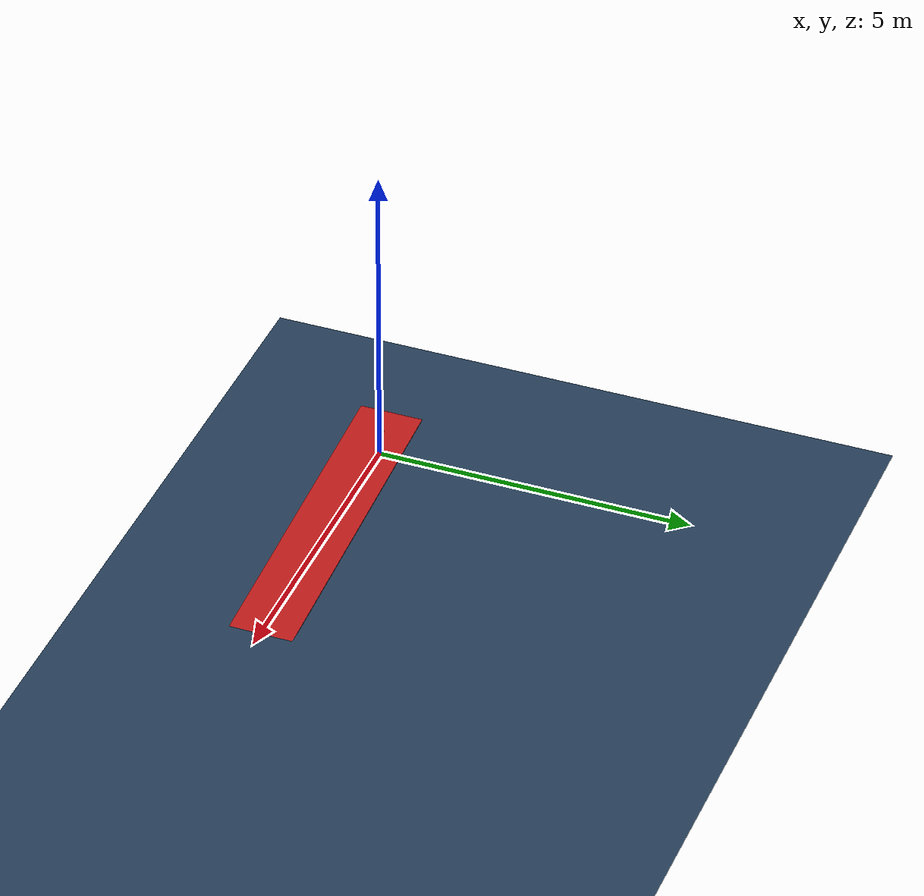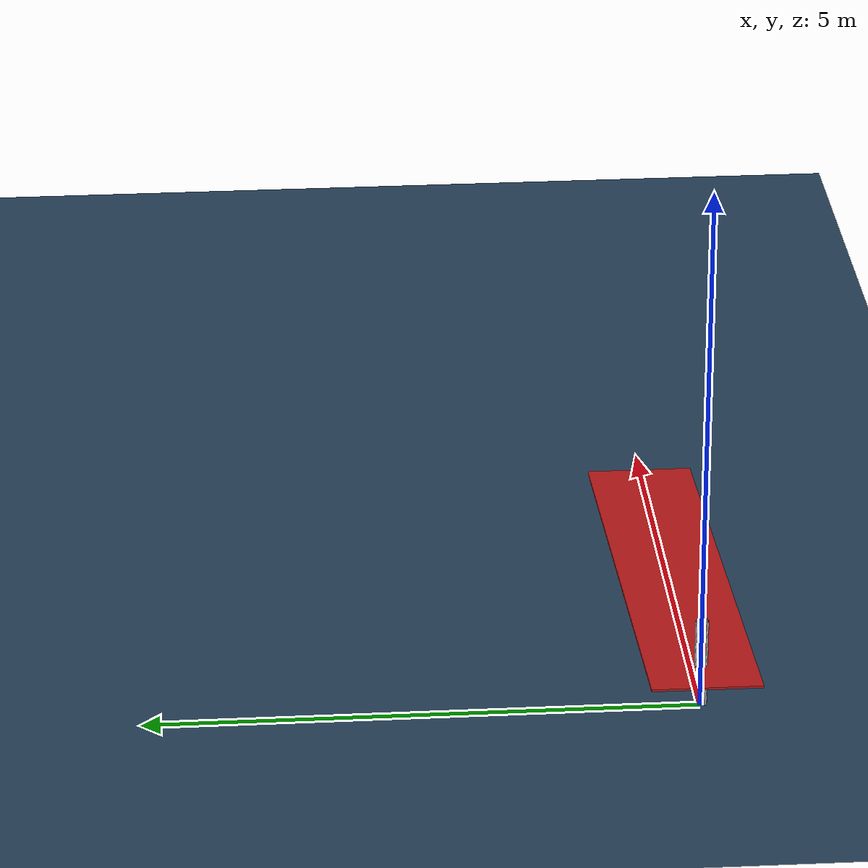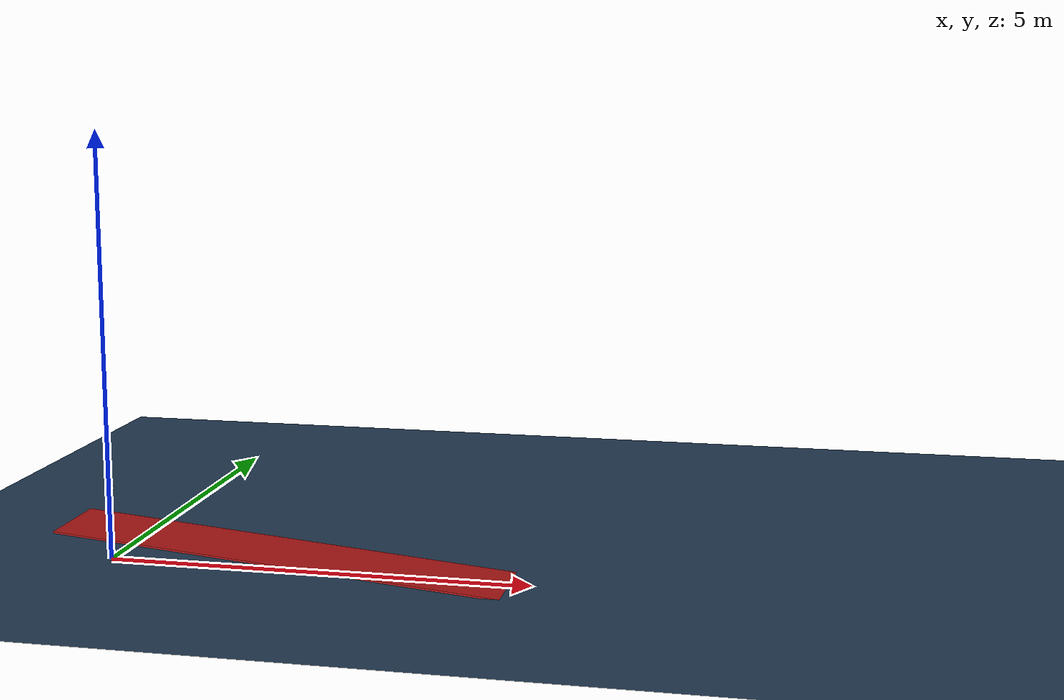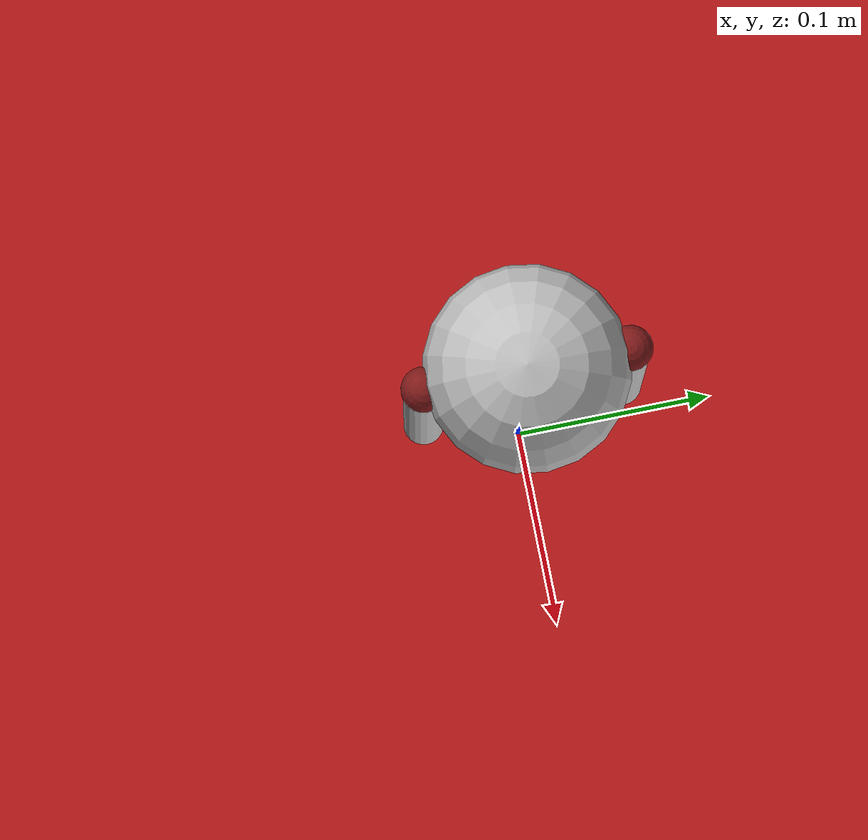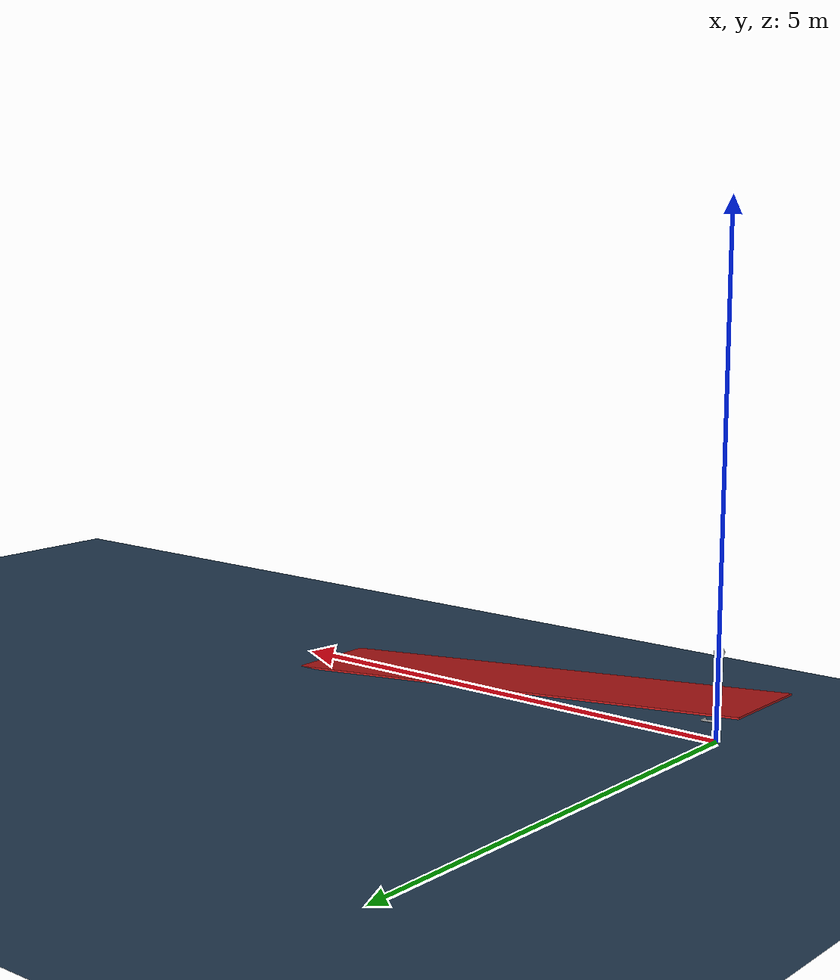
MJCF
<mujoco model="tensegrity default scene">
  <compiler angle="degree" coordinate="local" inertiafromgeom="true" autolimits="true" />
  <option integrator="RK4" timestep="0.001" gravity="0 0 -9.81" />

  <visual>
    <headlight diffuse="0.6 0.6 0.6" ambient="0.3 0.3 0.3" specular="0 0 0" />
    <rgba haze="0.15 0.25 0.35 1" />
    <global azimuth="120" elevation="-20" />
  </visual>

  <statistic center="0 0 .3" extent="1.2" />

  <asset>
    <texture type="skybox" builtin="gradient" rgb1="0.3 0.5 0.7" rgb2="0 0 0" width="512" height="3072" />
    <texture type="2d" name="groundplane" builtin="checker" mark="edge" rgb1="0.2 0.3 0.4" rgb2="0.1 0.2 0.3" markrgb="0.8 0.8 0.8" width="300" height="300" />
    <material name="groundplane" texture="groundplane" texuniform="true" texrepeat="5 5" reflectance="0.2" />
  </asset>

  <worldbody>
    <light pos="2.5 0 3" dir="0 0 -1" directional="false" />
    <geom name="floor" size="0 0 0.05" type="plane" material="groundplane" friction="150 150 150" />

    <geom name="slope" type="box" size="5 0.5 0.01" pos="4.5 0 0.0" rgba="0.75 0.1 0.1 1" euler="0 5 0" condim="4" />

  </worldbody>
<include file="PassiveWalkerRobot.xml" /></mujoco>

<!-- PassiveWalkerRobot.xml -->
<mujoco>
    <default>
        <joint armature="0.0" damping="0.01" type="hinge" range="-150 0" axis="0 -1 0"/>
        <geom condim="3" friction="1.5 1.0 1.0" margin="0.001"/>
        <default class="motor">
            <cylinder gear="100" ctrllimited="true" ctrlrange="-1 1"/>
        </default>
    </default>
    <worldbody>
        <body name="Base" pos="0.0 0.0 0.8532827888818888">
            <joint type="free"/>
            <geom type="sphere" rgba="0.75 0.75 0.75 1.0" size="0.05" mass="0.02"/>
            <body name="rod_0.1" pos="0.0 -0.05 -0.2499359706428231">
                <geom name="geom_0.1" type="capsule" fromto="-0.0 -0.0 0.2499359706428231 0.0 0.0 -0.2499359706428231" size="0.01" rgba="0.75 0.75 0.75 1.0" density="159.15494309189535"/>
                <site name="site_0.1" pos="0 0 0" quat="0.7071067811865476 -0.0 0.7071067811865475 0.0"/>
                <joint name="joint_Base=rod_0.1" pos="-0.0 -0.0 0.2499359706428231" range="-45 45"/>
                <body name="p0" pos="-0.0 -0.0 0.2499359706428231">
                    <geom type="sphere" size="0.011000000000000001" rgba="0.5 0.1 0.1 1.0" density="23873.2414637843"/>
                    <site name="p0"/>
                </body>
                <body name="rod_1.2" pos="0.0 0.0 -0.4208913944409444">
                    <geom name="geom_1.2" type="capsule" fromto="-0.0 -0.0 0.17095542379812131 0.0 0.0 -0.17095542379812131" size="0.01" rgba="0.75 0.75 0.75 1.0" density="159.15494309189535"/>
                    <site name="site_1.2" pos="0 0 0" quat="0.7071067811865476 -0.0 0.7071067811865475 0.0"/>
                    <joint name="joint_rod_0.1=rod_1.2" pos="-0.0 -0.0 0.17095542379812131" range="-150 0"/>
                    <body name="p1" pos="-0.0 -0.0 0.17095542379812131">
                        <geom type="sphere" size="0.011000000000000001" rgba="0.5 0.1 0.1 1.0" density="23873.2414637843"/>
                        <site name="p1"/>
                    </body>
                    <body name="rod_2.3" pos="0.24957178674970273 -0.012500000000000004 -0.17095542379812131">
                        <geom name="geom_2.3" type="capsule" fromto="-0.24957178674970273 0.012500000000000004 -0.0 0.24957178674970273 -0.012500000000000004 0.0" size="0.01" rgba="0.75 0.75 0.75 1.0" density="159.15494309189535"/>
                        <site name="site_2.3" pos="0 0 0" quat="0.9996869664537058 0.0 0.0 -0.025019374544287303"/>
                        <body name="rod_3.4" pos="0.24957178674970273 0.017499999999999995 0.0">
                            <geom name="geom_3.4" type="capsule" fromto="-0.0 -0.03 -0.0 0.0 0.03 0.0" size="0.01" rgba="0.75 0.75 0.75 1.0" density="159.15494309189535"/>
                            <site name="site_3.4" pos="0 0 0" quat="0.7071067811865476 0.0 0.0 0.7071067811865475"/>
                        </body>
                    </body>
                </body>
            </body>
            <body name="rod_5.6" pos="0.0 0.05 -0.24162377576819744">
                <geom name="geom_5.6" type="capsule" fromto="-0.0 -0.0 0.24162377576819744 0.0 0.0 -0.24162377576819744" size="0.01" rgba="0.75 0.75 0.75 1.0" density="159.15494309189535"/>
                <site name="site_5.6" pos="0 0 0" quat="0.7071067811865476 -0.0 0.7071067811865475 0.0"/>
                <joint name="joint_Base=rod_5.6" pos="-0.0 -0.0 0.24162377576819744" range="-45 45"/>
                <body name="p5" pos="-0.0 -0.0 0.24162377576819744">
                    <geom type="sphere" size="0.011000000000000001" rgba="0.5 0.1 0.1 1.0" density="23873.2414637843"/>
                    <site name="p5"/>
                </body>
                <body name="rod_6.7" pos="0.0 0.0 -0.3229553178785165">
                    <geom name="geom_6.7" type="capsule" fromto="-0.0 -0.0 0.08133154211031907 0.0 0.0 -0.08133154211031907" size="0.01" rgba="0.75 0.75 0.75 1.0" density="159.15494309189535"/>
                    <site name="site_6.7" pos="0 0 0" quat="0.7071067811865476 -0.0 0.7071067811865475 0.0"/>
                    <joint name="joint_rod_5.6=rod_6.7" pos="-0.0 -0.0 0.08133154211031907" range="-150 0"/>
                    <body name="p6" pos="-0.0 -0.0 0.08133154211031907">
                        <geom type="sphere" size="0.011000000000000001" rgba="0.5 0.1 0.1 1.0" density="23873.2414637843"/>
                        <site name="p6"/>
                    </body>
                    <body name="rod_7.8" pos="0.056250837581451246 0.012500000000000004 -0.08133154211031907">
                        <geom name="geom_7.8" type="capsule" fromto="-0.056250837581451246 -0.012500000000000004 -0.0 0.056250837581451246 0.012500000000000004 0.0" size="0.01" rgba="0.75 0.75 0.75 1.0" density="159.15494309189535"/>
                        <site name="site_7.8" pos="0 0 0" quat="0.9940291102892526 0.0 0.0 0.10911520470382192"/>
                        <body name="rod_8.9" pos="0.056250837581451246 -0.017499999999999995 0.0">
                            <geom name="geom_8.9" type="capsule" fromto="-0.0 0.03 -0.0 0.0 -0.03 0.0" size="0.01" rgba="0.75 0.75 0.75 1.0" density="159.15494309189535"/>
                            <site name="site_8.9" pos="0 0 0" quat="0.7071067811865476 0.0 0.0 -0.7071067811865475"/>
                        </body>
                    </body>
                </body>
            </body>
        </body>
    </worldbody>
    <actuator/>
    <sensor>
        <accelerometer site="site_0.1"/>
        <gyro site="site_0.1"/>
        <magnetometer site="site_0.1"/>
        <accelerometer site="site_1.2"/>
        <gyro site="site_1.2"/>
        <magnetometer site="site_1.2"/>
        <accelerometer site="site_2.3"/>
        <gyro site="site_2.3"/>
        <magnetometer site="site_2.3"/>
        <accelerometer site="site_3.4"/>
        <gyro site="site_3.4"/>
        <magnetometer site="site_3.4"/>
        <accelerometer site="site_5.6"/>
        <gyro site="site_5.6"/>
        <magnetometer site="site_5.6"/>
        <accelerometer site="site_6.7"/>
        <gyro site="site_6.7"/>
        <magnetometer site="site_6.7"/>
        <accelerometer site="site_7.8"/>
        <gyro site="site_7.8"/>
        <magnetometer site="site_7.8"/>
        <accelerometer site="site_8.9"/>
        <gyro site="site_8.9"/>
        <magnetometer site="site_8.9"/>
    </sensor>
    <contact>
        <pair geom1="geom_0.1" geom2="floor"/>
        <pair geom1="geom_1.2" geom2="floor"/>
        <pair geom1="geom_2.3" geom2="floor"/>
        <pair geom1="geom_3.4" geom2="floor"/>
        <pair geom1="geom_5.6" geom2="floor"/>
        <pair geom1="geom_6.7" geom2="floor"/>
        <pair geom1="geom_7.8" geom2="floor"/>
        <pair geom1="geom_8.9" geom2="floor"/>
    </contact>
</mujoco>
